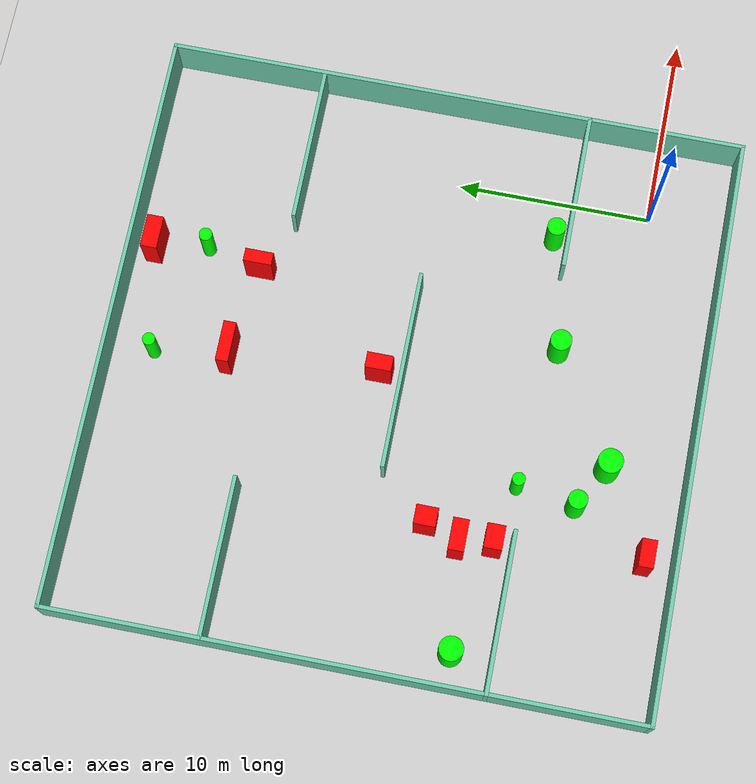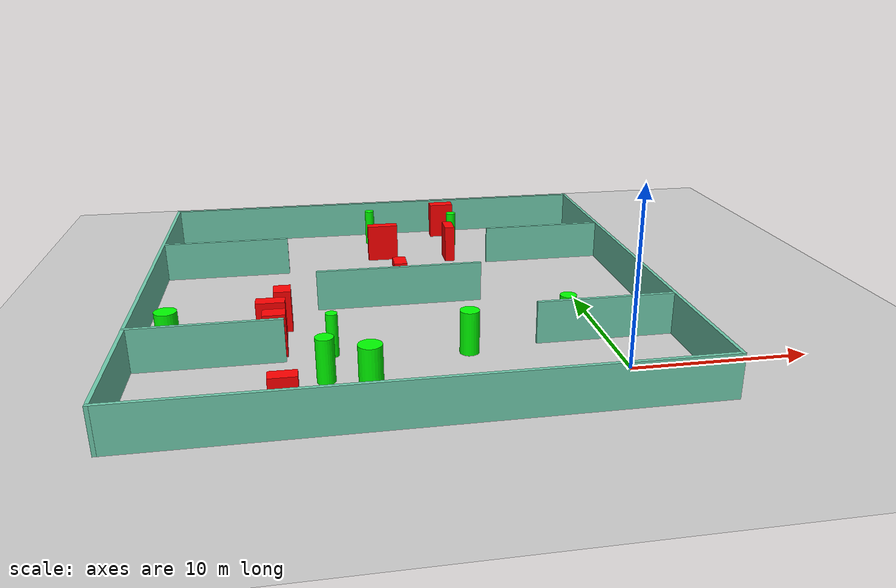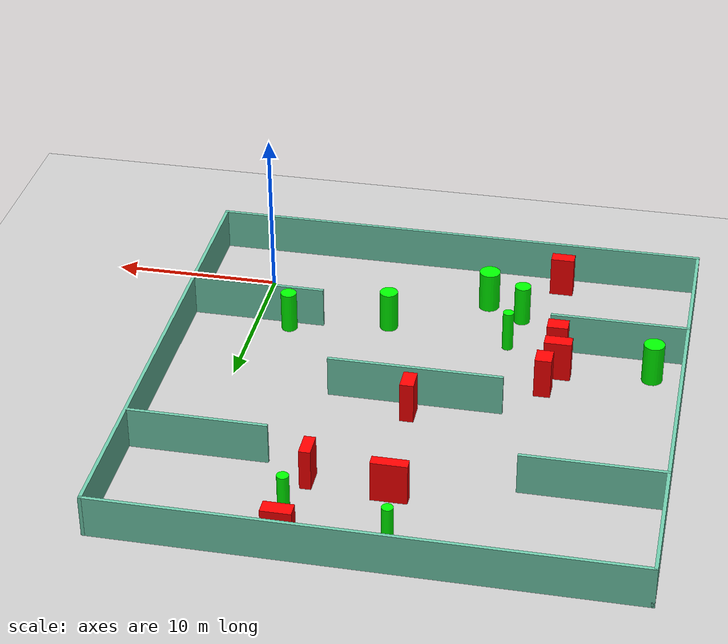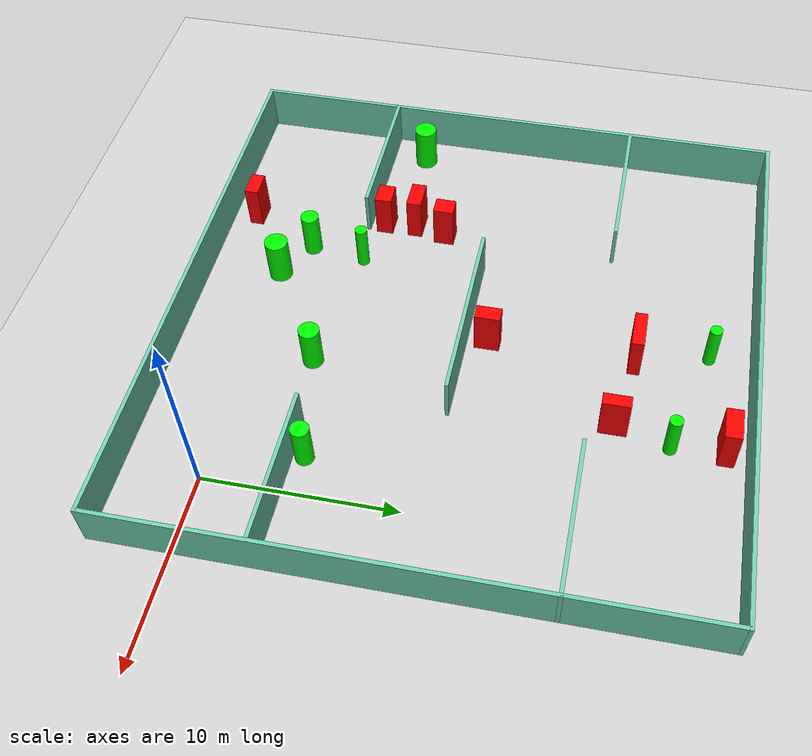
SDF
<sdf version="1.7">
 <world name="default">
  <light name="sun" type="directional">
   <pose>0 0 10 0 -0 0</pose>
   <diffuse>0.8 0.8 0.8 1</diffuse>
   <specular>0.2 0.2 0.2 1</specular>
   <attenuation>
    <range>1000</range>
    <constant>0.9</constant>
    <linear>0.01</linear>
    <quadratic>0.001</quadratic>
   </attenuation>
   <direction>-0.5 0.1 -0.9</direction>
   <spot><inner_angle>0</inner_angle><outer_angle>0</outer_angle><falloff>0</falloff></spot>
  </light>
  <model name="ground_plane">
   <static>1</static>
   <link name="link">
    <collision name="collision">
     <geometry><plane><normal>0 0 1</normal><size>100 100</size></plane></geometry>
     <surface>
      <contact><collide_bitmask>65535</collide_bitmask></contact>
      <friction><ode><mu>100</mu><mu2>50</mu2></ode></friction>
     </surface>
    </collision>
    <visual name="visual">
     <cast_shadows>0</cast_shadows>
     <geometry><plane><normal>0 0 1</normal><size>100 100</size></plane></geometry>
     <material>
      <script><uri>file://media/materials/scripts/gazebo.material</uri><name>Gazebo/Grey</name></script>
     </material>
    </visual>
   </link>
  </model>
  <gravity>0 0 -9.8</gravity>
  <magnetic_field>6e-06 2.3e-05 -4.2e-05</magnetic_field>
  <atmosphere type="adiabatic"/>
  <physics type="ode">
   <max_step_size>0.001</max_step_size>
   <real_time_factor>1</real_time_factor>
   <real_time_update_rate>1000</real_time_update_rate>
  </physics>
  <scene><ambient>0.4 0.4 0.4 1</ambient><background>0.7 0.7 0.7 1</background><shadows>1</shadows></scene>
  <spherical_coordinates>
   <surface_model>EARTH_WGS84</surface_model>
   <latitude_deg>0</latitude_deg>
   <longitude_deg>0</longitude_deg>
   <elevation>0</elevation>
   <heading_deg>0</heading_deg>
  </spherical_coordinates>
  <model name="my_base_walls">
   <link name="Wall_10">
    <collision name="Wall_10_Collision">
     <geometry><box><size>8.2 0.2 2.5</size></box></geometry>
     <pose>0 0 1.25 0 -0 0</pose>
    </collision>
    <visual name="Wall_10_Visual">
     <pose>0 0 1.25 0 -0 0</pose>
     <geometry><box><size>8.2 0.2 2.5</size></box></geometry>
     <material>
      <script><uri>file://media/materials/scripts/gazebo.material</uri><name>Gazebo/Grey</name></script>
      <ambient>0.435294 0.796078 0.67451 1</ambient>
     </material>
     <meta><layer>0</layer></meta>
    </visual>
    <pose>-11 -7 0 0 -0 0</pose>
   </link>
   <link name="Wall_12">
    <collision name="Wall_12_Collision">
     <geometry><box><size>8.2 0.2 2.5</size></box></geometry>
     <pose>0 0 1.25 0 -0 0</pose>
    </collision>
    <visual name="Wall_12_Visual">
     <pose>0 0 1.25 0 -0 0</pose>
     <geometry><box><size>8.2 0.2 2.5</size></box></geometry>
     <material>
      <script><uri>file://media/materials/scripts/gazebo.material</uri><name>Gazebo/Grey</name></script>
      <ambient>0.435294 0.796078 0.67451 1</ambient>
     </material>
     <meta><layer>0</layer></meta>
    </visual>
    <pose>-11 7 0 0 -0 0</pose>
   </link>
   <link name="Wall_14">
    <collision name="Wall_14_Collision">
     <geometry><box><size>8.2 0.2 2.5</size></box></geometry>
     <pose>0 0 1.25 0 -0 0</pose>
    </collision>
    <visual name="Wall_14_Visual">
     <pose>0 0 1.25 0 -0 0</pose>
     <geometry><box><size>8.2 0.2 2.5</size></box></geometry>
     <material>
      <script><uri>file://media/materials/scripts/gazebo.material</uri><name>Gazebo/Grey</name></script>
      <ambient>0.435294 0.796078 0.67451 1</ambient>
     </material>
     <meta><layer>0</layer></meta>
    </visual>
    <pose>11 7 0 0 -0 3.14159</pose>
   </link>
   <link name="Wall_16">
    <collision name="Wall_16_Collision">
     <geometry><box><size>10.2 0.2 2.5</size></box></geometry>
     <pose>0 0 1.25 0 -0 0</pose>
    </collision>
    <visual name="Wall_16_Visual">
     <pose>0 0 1.25 0 -0 0</pose>
     <geometry><box><size>10.2 0.2 2.5</size></box></geometry>
     <material>
      <script><uri>file://media/materials/scripts/gazebo.material</uri><name>Gazebo/Grey</name></script>
      <ambient>0.435294 0.796078 0.67451 1</ambient>
     </material>
     <meta><layer>0</layer></meta>
    </visual>
    <pose>0 0 0 0 -0 3.14159</pose>
   </link>
   <link name="Wall_2">
    <collision name="Wall_2_Collision">
     <geometry><box><size>30.2 0.2 2.5</size></box></geometry>
     <pose>0 0 1.25 0 -0 0</pose>
    </collision>
    <visual name="Wall_2_Visual">
     <pose>0 0 1.25 0 -0 0</pose>
     <geometry><box><size>30.2 0.2 2.5</size></box></geometry>
     <material>
      <script><uri>file://media/materials/scripts/gazebo.material</uri><name>Gazebo/Grey</name></script>
      <ambient>0.435294 0.796078 0.67451 1</ambient>
     </material>
     <meta><layer>0</layer></meta>
    </visual>
    <pose>0 -15 0 0 -0 3.14159</pose>
   </link>
   <link name="Wall_3">
    <collision name="Wall_3_Collision">
     <geometry><box><size>30.2 0.2 2.5</size></box></geometry>
     <pose>0 0 1.25 0 -0 0</pose>
    </collision>
    <visual name="Wall_3_Visual">
     <pose>0 0 1.25 0 -0 0</pose>
     <geometry><box><size>30.2 0.2 2.5</size></box></geometry>
     <material>
      <script><uri>file://media/materials/scripts/gazebo.material</uri><name>Gazebo/Grey</name></script>
      <ambient>0.435294 0.796078 0.67451 1</ambient>
     </material>
     <meta><layer>0</layer></meta>
    </visual>
    <pose>-15 0 0 0 -0 1.5708</pose>
   </link>
   <link name="Wall_4">
    <collision name="Wall_4_Collision">
     <geometry><box><size>30.2 0.2 2.5</size></box></geometry>
     <pose>0 0 1.25 0 -0 0</pose>
    </collision>
    <visual name="Wall_4_Visual">
     <pose>0 0 1.25 0 -0 0</pose>
     <geometry><box><size>30.2 0.2 2.5</size></box></geometry>
     <material>
      <script><uri>file://media/materials/scripts/gazebo.material</uri><name>Gazebo/Grey</name></script>
      <ambient>0.435294 0.796078 0.67451 1</ambient>
     </material>
     <meta><layer>0</layer></meta>
    </visual>
    <pose>0 15 0 0 -0 0</pose>
   </link>
   <link name="Wall_6">
    <collision name="Wall_6_Collision">
     <geometry><box><size>30.2 0.2 2.5</size></box></geometry>
     <pose>0 0 1.25 0 -0 0</pose>
    </collision>
    <visual name="Wall_6_Visual">
     <pose>0 0 1.25 0 -0 0</pose>
     <geometry><box><size>30.2 0.2 2.5</size></box></geometry>
     <material>
      <script><uri>file://media/materials/scripts/gazebo.material</uri><name>Gazebo/Grey</name></script>
      <ambient>0.435294 0.796078 0.67451 1</ambient>
     </material>
     <meta><layer>0</layer></meta>
    </visual>
    <pose>15 0 0 0 -0 1.5708</pose>
   </link>
   <link name="Wall_8">
    <collision name="Wall_8_Collision">
     <geometry><box><size>8.2 0.2 2.5</size></box></geometry>
     <pose>0 0 1.25 0 -0 0</pose>
    </collision>
    <visual name="Wall_8_Visual">
     <pose>0 0 1.25 0 -0 0</pose>
     <geometry><box><size>8.2 0.2 2.5</size></box></geometry>
     <material>
      <script><uri>file://media/materials/scripts/gazebo.material</uri><name>Gazebo/Grey</name></script>
      <ambient>0.435294 0.796078 0.67451 1</ambient>
     </material>
     <meta><layer>0</layer></meta>
    </visual>
    <pose>11 -7 0 0 -0 3.14159</pose>
   </link>
   <static>1</static>
   <pose>-11 11 0 0 -0 0</pose>
  </model>
  <model name="cylinder1">
   <static>1</static>
   <link name="link">
    <inertial>
     <mass>1</mass>
     <inertia><ixx>0.5</ixx><ixy>0</ixy><ixz>0</ixz><iyy>0.5</iyy><iyz>0</iyz><izz>1</izz></inertia>
    </inertial>
    <collision name="collision">
     <geometry><cylinder><radius>0.32546612251661117</radius><length>2.5</length></cylinder></geometry>
    </collision>
    <visual name="visual">
     <geometry><cylinder><radius>0.32546612251661117</radius><length>2.5</length></cylinder></geometry>
     <material>
      <ambient>0 1 0 1</ambient>
      <diffuse>0 1 0 1</diffuse>
      <specular>0.1 0.1 0.1 1</specular>
      <emissive>0 0 0 0</emissive>
     </material>
    </visual>
   </link>
   <pose>-11.907951112387025 23.76092805499848 1.25 0 0 0</pose>
  </model>
  <model name="cylinder2">
   <static>1</static>
   <link name="link">
    <inertial>
     <mass>1</mass>
     <inertia><ixx>0.5</ixx><ixy>0</ixy><ixz>0</ixz><iyy>0.5</iyy><iyz>0</iyz><izz>1</izz></inertia>
    </inertial>
    <collision name="collision">
     <geometry><cylinder><radius>0.5469714175150556</radius><length>2.5</length></cylinder></geometry>
    </collision>
    <visual name="visual">
     <geometry><cylinder><radius>0.5469714175150556</radius><length>2.5</length></cylinder></geometry>
     <material>
      <ambient>0 1 0 1</ambient>
      <diffuse>0 1 0 1</diffuse>
      <specular>0.1 0.1 0.1 1</specular>
      <emissive>0 0 0 0</emissive>
     </material>
    </visual>
   </link>
   <pose>-8.020015409891696 3.4544100551622297 1.25 0 0 0</pose>
  </model>
  <model name="cylinder3">
   <static>1</static>
   <link name="link">
    <inertial>
     <mass>1</mass>
     <inertia><ixx>0.5</ixx><ixy>0</ixy><ixz>0</ixz><iyy>0.5</iyy><iyz>0</iyz><izz>1</izz></inertia>
    </inertial>
    <collision name="collision">
     <geometry><cylinder><radius>0.34175178807740547</radius><length>2.5</length></cylinder></geometry>
    </collision>
    <visual name="visual">
     <geometry><cylinder><radius>0.34175178807740547</radius><length>2.5</length></cylinder></geometry>
     <material>
      <ambient>0 1 0 1</ambient>
      <diffuse>0 1 0 1</diffuse>
      <specular>0.1 0.1 0.1 1</specular>
      <emissive>0 0 0 0</emissive>
     </material>
    </visual>
   </link>
   <pose>-5.951695528036687 22.17676610654524 1.25 0 0 0</pose>
  </model>
  <model name="cylinder4">
   <static>1</static>
   <link name="link">
    <inertial>
     <mass>1</mass>
     <inertia><ixx>0.5</ixx><ixy>0</ixy><ixz>0</ixz><iyy>0.5</iyy><iyz>0</iyz><izz>1</izz></inertia>
    </inertial>
    <collision name="collision">
     <geometry><cylinder><radius>0.6334034311997664</radius><length>2.5</length></cylinder></geometry>
    </collision>
    <visual name="visual">
     <geometry><cylinder><radius>0.6334034311997664</radius><length>2.5</length></cylinder></geometry>
     <material>
      <ambient>0 1 0 1</ambient>
      <diffuse>0 1 0 1</diffuse>
      <specular>0.1 0.1 0.1 1</specular>
      <emissive>0 0 0 0</emissive>
     </material>
    </visual>
   </link>
   <pose>-13.656990808322249 0.016807814543239985 1.25 0 0 0</pose>
  </model>
  <model name="cylinder5">
   <static>1</static>
   <link name="link">
    <inertial>
     <mass>1</mass>
     <inertia><ixx>0.5</ixx><ixy>0</ixy><ixz>0</ixz><iyy>0.5</iyy><iyz>0</iyz><izz>1</izz></inertia>
    </inertial>
    <collision name="collision">
     <geometry><cylinder><radius>0.4901920568416992</radius><length>2.5</length></cylinder></geometry>
    </collision>
    <visual name="visual">
     <geometry><cylinder><radius>0.4901920568416992</radius><length>2.5</length></cylinder></geometry>
     <material>
      <ambient>0 1 0 1</ambient>
      <diffuse>0 1 0 1</diffuse>
      <specular>0.1 0.1 0.1 1</specular>
      <emissive>0 0 0 0</emissive>
     </material>
    </visual>
   </link>
   <pose>-15.861660647266113 1.2729447942198675 1.25 0 0 0</pose>
  </model>
  <model name="cylinder6">
   <static>1</static>
   <link name="link">
    <inertial>
     <mass>1</mass>
     <inertia><ixx>0.5</ixx><ixy>0</ixy><ixz>0</ixz><iyy>0.5</iyy><iyz>0</iyz><izz>1</izz></inertia>
    </inertial>
    <collision name="collision">
     <geometry><cylinder><radius>0.4787450795010656</radius><length>2.5</length></cylinder></geometry>
    </collision>
    <visual name="visual">
     <geometry><cylinder><radius>0.4787450795010656</radius><length>2.5</length></cylinder></geometry>
     <material>
      <ambient>0 1 0 1</ambient>
      <diffuse>0 1 0 1</diffuse>
      <specular>0.1 0.1 0.1 1</specular>
      <emissive>0 0 0 0</emissive>
     </material>
    </visual>
   </link>
   <pose>-2.1132455660122034 4.69166787456348 1.25 0 0 0</pose>
  </model>
  <model name="cylinder7">
   <static>1</static>
   <link name="link">
    <inertial>
     <mass>1</mass>
     <inertia><ixx>0.5</ixx><ixy>0</ixy><ixz>0</ixz><iyy>0.5</iyy><iyz>0</iyz><izz>1</izz></inertia>
    </inertial>
    <collision name="collision">
     <geometry><cylinder><radius>0.6184793390700772</radius><length>2.5</length></cylinder></geometry>
    </collision>
    <visual name="visual">
     <geometry><cylinder><radius>0.6184793390700772</radius><length>2.5</length></cylinder></geometry>
     <material>
      <ambient>0 1 0 1</ambient>
      <diffuse>0 1 0 1</diffuse>
      <specular>0.1 0.1 0.1 1</specular>
      <emissive>0 0 0 0</emissive>
     </material>
    </visual>
   </link>
   <pose>-24.199428752156933 6.040531219816366 1.25 0 0 0</pose>
  </model>
  <model name="cylinder8">
   <static>1</static>
   <link name="link">
    <inertial>
     <mass>1</mass>
     <inertia><ixx>0.5</ixx><ixy>0</ixy><ixz>0</ixz><iyy>0.5</iyy><iyz>0</iyz><izz>1</izz></inertia>
    </inertial>
    <collision name="collision">
     <geometry><cylinder><radius>0.3300560876869059</radius><length>2.5</length></cylinder></geometry>
    </collision>
    <visual name="visual">
     <geometry><cylinder><radius>0.3300560876869059</radius><length>2.5</length></cylinder></geometry>
     <material>
      <ambient>0 1 0 1</ambient>
      <diffuse>0 1 0 1</diffuse>
      <specular>0.1 0.1 0.1 1</specular>
      <emissive>0 0 0 0</emissive>
     </material>
    </visual>
   </link>
   <pose>-15.411425123402948 4.30698351155093 1.25 0 0 0</pose>
  </model>
  <model name="box1">
   <static>1</static>
   <link name="link">
    <inertial>
     <mass>1</mass>
     <inertia><ixx>0.083</ixx><ixy>0</ixy><ixz>0</ixz><iyy>0.083</iyy><iyz>0</iyz><izz>0.083</izz></inertia>
    </inertial>
    <collision name="collision">
     <geometry><box><size>1.2416399823135893 0.9246530433565479 2.5</size></box></geometry>
    </collision>
    <visual name="visual">
     <geometry><box><size>1.2416399823135893 0.9246530433565479 2.5</size></box></geometry>
     <material>
      <ambient>1 0 0 1</ambient>
      <diffuse>1 0 0 1</diffuse>
      <specular>0.1 0.1 0.1 1</specular>
      <emissive>0 0 0 0</emissive>
     </material>
    </visual>
    <sensor name="my_contact" type="contact">
     <contact><collision>box_collision</collision><topic>__default_topic__</topic></contact>
    </sensor>
   </link>
   <pose>-18.45490092846225 4.950051037389347 1.25 0 0 0</pose>
  </model>
  <model name="box2">
   <static>1</static>
   <link name="link">
    <inertial>
     <mass>1</mass>
     <inertia><ixx>0.083</ixx><ixy>0</ixy><ixz>0</ixz><iyy>0.083</iyy><iyz>0</iyz><izz>0.083</izz></inertia>
    </inertial>
    <collision name="collision">
     <geometry><box><size>0.8050237754252093 1.340618618448654 2.5</size></box></geometry>
    </collision>
    <visual name="visual">
     <geometry><box><size>0.8050237754252093 1.340618618448654 2.5</size></box></geometry>
     <material>
      <ambient>1 0 0 1</ambient>
      <diffuse>1 0 0 1</diffuse>
      <specular>0.1 0.1 0.1 1</specular>
      <emissive>0 0 0 0</emissive>
     </material>
    </visual>
    <sensor name="my_contact" type="contact">
     <contact><collision>box_collision</collision><topic>__default_topic__</topic></contact>
    </sensor>
   </link>
   <pose>-10.862212645936248 12.194230897542464 1.25 0 0 0</pose>
  </model>
  <model name="box3">
   <static>1</static>
   <link name="link">
    <inertial>
     <mass>1</mass>
     <inertia><ixx>0.083</ixx><ixy>0</ixy><ixz>0</ixz><iyy>0.083</iyy><iyz>0</iyz><izz>0.083</izz></inertia>
    </inertial>
    <collision name="collision">
     <geometry><box><size>1.4110680570972196 0.7609778915505142 2.5</size></box></geometry>
    </collision>
    <visual name="visual">
     <geometry><box><size>1.4110680570972196 0.7609778915505142 2.5</size></box></geometry>
     <material>
      <ambient>1 0 0 1</ambient>
      <diffuse>1 0 0 1</diffuse>
      <specular>0.1 0.1 0.1 1</specular>
      <emissive>0 0 0 0</emissive>
     </material>
    </visual>
    <sensor name="my_contact" type="contact">
     <contact><collision>box_collision</collision><topic>__default_topic__</topic></contact>
    </sensor>
   </link>
   <pose>-17.84640755419597 -2.499456075552832 1.25 0 0 0</pose>
  </model>
  <model name="box4">
   <static>1</static>
   <link name="link">
    <inertial>
     <mass>1</mass>
     <inertia><ixx>0.083</ixx><ixy>0</ixy><ixz>0</ixz><iyy>0.083</iyy><iyz>0</iyz><izz>0.083</izz></inertia>
    </inertial>
    <collision name="collision">
     <geometry><box><size>1.707417740011028 0.8479277168251445 2.5</size></box></geometry>
    </collision>
    <visual name="visual">
     <geometry><box><size>1.707417740011028 0.8479277168251445 2.5</size></box></geometry>
     <material>
      <ambient>1 0 0 1</ambient>
      <diffuse>1 0 0 1</diffuse>
      <specular>0.1 0.1 0.1 1</specular>
      <emissive>0 0 0 0</emissive>
     </material>
    </visual>
    <sensor name="my_contact" type="contact">
     <contact><collision>box_collision</collision><topic>__default_topic__</topic></contact>
    </sensor>
   </link>
   <pose>-6.307067790345721 24.896550913257848 1.25 0 0 0</pose>
  </model>
  <model name="box5">
   <static>1</static>
   <link name="link">
    <inertial>
     <mass>1</mass>
     <inertia><ixx>0.083</ixx><ixy>0</ixy><ixz>0</ixz><iyy>0.083</iyy><iyz>0</iyz><izz>0.083</izz></inertia>
    </inertial>
    <collision name="collision">
     <geometry><box><size>2.073280548486805 0.6484504057560347 2.5</size></box></geometry>
    </collision>
    <visual name="visual">
     <geometry><box><size>2.073280548486805 0.6484504057560347 2.5</size></box></geometry>
     <material>
      <ambient>1 0 0 1</ambient>
      <diffuse>1 0 0 1</diffuse>
      <specular>0.1 0.1 0.1 1</specular>
      <emissive>0 0 0 0</emissive>
     </material>
    </visual>
    <sensor name="my_contact" type="contact">
     <contact><collision>box_collision</collision><topic>__default_topic__</topic></contact>
    </sensor>
   </link>
   <pose>-11.282458419842868 19.94465946559604 1.25 0 0 0</pose>
  </model>
  <model name="box6">
   <static>1</static>
   <link name="link">
    <inertial>
     <mass>1</mass>
     <inertia><ixx>0.083</ixx><ixy>0</ixy><ixz>0</ixz><iyy>0.083</iyy><iyz>0</iyz><izz>0.083</izz></inertia>
    </inertial>
    <collision name="collision">
     <geometry><box><size>0.6597808752450713 1.4552726718478808 2.5</size></box></geometry>
    </collision>
    <visual name="visual">
     <geometry><box><size>0.6597808752450713 1.4552726718478808 2.5</size></box></geometry>
     <material>
      <ambient>1 0 0 1</ambient>
      <diffuse>1 0 0 1</diffuse>
      <specular>0.1 0.1 0.1 1</specular>
      <emissive>0 0 0 0</emissive>
     </material>
    </visual>
    <sensor name="my_contact" type="contact">
     <contact><collision>box_collision</collision><topic>__default_topic__</topic></contact>
    </sensor>
   </link>
   <pose>-6.614605218030453 19.283185825357695 1.25 0 0 0</pose>
  </model>
  <model name="box7">
   <static>1</static>
   <link name="link">
    <inertial>
     <mass>1</mass>
     <inertia><ixx>0.083</ixx><ixy>0</ixy><ixz>0</ixz><iyy>0.083</iyy><iyz>0</iyz><izz>0.083</izz></inertia>
    </inertial>
    <collision name="collision">
     <geometry><box><size>0.9776801225248393 1.1198122751284787 2.5</size></box></geometry>
    </collision>
    <visual name="visual">
     <geometry><box><size>0.9776801225248393 1.1198122751284787 2.5</size></box></geometry>
     <material>
      <ambient>1 0 0 1</ambient>
      <diffuse>1 0 0 1</diffuse>
      <specular>0.1 0.1 0.1 1</specular>
      <emissive>0 0 0 0</emissive>
     </material>
    </visual>
    <sensor name="my_contact" type="contact">
     <contact><collision>box_collision</collision><topic>__default_topic__</topic></contact>
    </sensor>
   </link>
   <pose>-18.086063916584177 8.435308019051487 1.25 0 0 0</pose>
  </model>
  <model name="box8">
   <static>1</static>
   <link name="link">
    <inertial>
     <mass>1</mass>
     <inertia><ixx>0.083</ixx><ixy>0</ixy><ixz>0</ixz><iyy>0.083</iyy><iyz>0</iyz><izz>0.083</izz></inertia>
    </inertial>
    <collision name="collision">
     <geometry><box><size>1.6175785582892621 0.8140333682291967 2.5</size></box></geometry>
    </collision>
    <visual name="visual">
     <geometry><box><size>1.6175785582892621 0.8140333682291967 2.5</size></box></geometry>
     <material>
      <ambient>1 0 0 1</ambient>
      <diffuse>1 0 0 1</diffuse>
      <specular>0.1 0.1 0.1 1</specular>
      <emissive>0 0 0 0</emissive>
     </material>
    </visual>
    <sensor name="my_contact" type="contact">
     <contact><collision>box_collision</collision><topic>__default_topic__</topic></contact>
    </sensor>
   </link>
   <pose>-18.690722966860317 6.697058964353463 1.25 0 0 0</pose>
  </model>
 </world>
</sdf>
